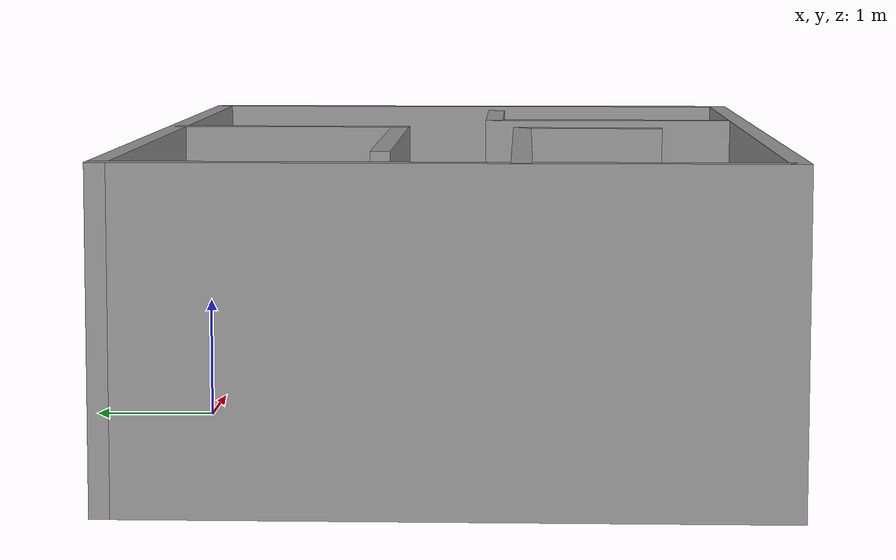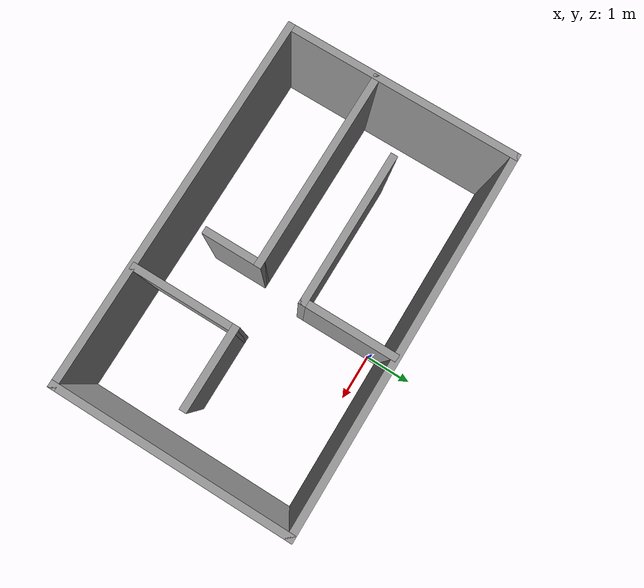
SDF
<?xml version='1.0'?>
<sdf version='1.7'>
  <model name='room'>
    <pose>-0.415 -2.155 0 0 -0 0</pose>
    <link name='Wall_11'>
      <collision name='Wall_11_Collision'>
        <geometry>
          <box>
            <size>2 0.15 2.5</size>
          </box>
        </geometry>
        <pose>0 0 1.25 0 -0 0</pose>
      </collision>
      <visual name='Wall_11_Visual'>
        <pose>0 0 1.25 0 -0 0</pose>
        <geometry>
          <box>
            <size>2 0.15 2.5</size>
          </box>
        </geometry>
        <material>
          <script>
            <uri>file://media/materials/scripts/gazebo.material</uri>
            <name>Gazebo/Grey</name>
          </script>
          <ambient>1 1 1 1</ambient>
        </material>
        <meta>
          <layer>0</layer>
        </meta>
      </visual>
      <pose>0.3885 1.447 0 0 -0 -1.5708</pose>
    </link>
    <link name='Wall_12'>
      <collision name='Wall_12_Collision'>
        <geometry>
          <box>
            <size>3.25 0.15 2.5</size>
          </box>
        </geometry>
        <pose>0 0 1.25 0 -0 0</pose>
      </collision>
      <visual name='Wall_12_Visual'>
        <pose>0 0 1.25 0 -0 0</pose>
        <geometry>
          <box>
            <size>3.25 0.15 2.5</size>
          </box>
        </geometry>
        <material>
          <script>
            <uri>file://media/materials/scripts/gazebo.material</uri>
            <name>Gazebo/Grey</name>
          </script>
          <ambient>1 1 1 1</ambient>
        </material>
        <meta>
          <layer>0</layer>
        </meta>
      </visual>
      <pose>-1.1615 0.522 0 0 -0 3.14159</pose>
    </link>
    <link name='Wall_14'>
      <collision name='Wall_14_Collision'>
        <geometry>
          <box>
            <size>4.25 0.15 2.5</size>
          </box>
        </geometry>
        <pose>0 0 1.25 0 -0 0</pose>
      </collision>
      <visual name='Wall_14_Visual'>
        <pose>0 0 1.25 0 -0 0</pose>
        <geometry>
          <box>
            <size>4.25 0.15 2.5</size>
          </box>
        </geometry>
        <material>
          <script>
            <uri>file://media/materials/scripts/gazebo.material</uri>
            <name>Gazebo/Grey</name>
          </script>
          <ambient>1 1 1 1</ambient>
        </material>
        <meta>
          <layer>0</layer>
        </meta>
      </visual>
      <pose>-1.828 -0.5145 0 0 -0 0</pose>
    </link>
    <link name='Wall_15'>
      <collision name='Wall_15_Collision'>
        <geometry>
          <box>
            <size>1.25 0.15 2.5</size>
          </box>
        </geometry>
        <pose>0 0 1.25 0 -0 0</pose>
      </collision>
      <visual name='Wall_15_Visual'>
        <pose>0 0 1.25 0 -0 0</pose>
        <geometry>
          <box>
            <size>1.25 0.15 2.5</size>
          </box>
        </geometry>
        <material>
          <script>
            <uri>file://media/materials/scripts/gazebo.material</uri>
            <name>Gazebo/Grey</name>
          </script>
          <ambient>1 1 1 1</ambient>
        </material>
        <meta>
          <layer>0</layer>
        </meta>
      </visual>
      <pose>0.222 -1.0645 0 0 -0 -1.5708</pose>
    </link>
    <link name='Wall_18'>
      <collision name='Wall_18_Collision'>
        <geometry>
          <box>
            <size>2.25 0.15 2.5</size>
          </box>
        </geometry>
        <pose>0 0 1.25 0 -0 0</pose>
      </collision>
      <visual name='Wall_18_Visual'>
        <pose>0 0 1.25 0 -0 0</pose>
        <geometry>
          <box>
            <size>2.25 0.15 2.5</size>
          </box>
        </geometry>
        <material>
          <script>
            <uri>file://media/materials/scripts/gazebo.material</uri>
            <name>Gazebo/Grey</name>
          </script>
          <ambient>1 1 1 1</ambient>
        </material>
        <meta>
          <layer>0</layer>
        </meta>
      </visual>
      <pose>1.4465 -1.316 0 0 -0 1.5708</pose>
    </link>
    <link name='Wall_19'>
      <collision name='Wall_19_Collision'>
        <geometry>
          <box>
            <size>1.75 0.15 2.5</size>
          </box>
        </geometry>
        <pose>0 0 1.25 0 -0 0</pose>
      </collision>
      <visual name='Wall_19_Visual'>
        <pose>0 0 1.25 0 -0 0</pose>
        <geometry>
          <box>
            <size>1.75 0.15 2.5</size>
          </box>
        </geometry>
        <material>
          <script>
            <uri>file://media/materials/scripts/gazebo.material</uri>
            <name>Gazebo/Grey</name>
          </script>
          <ambient>1 1 1 1</ambient>
        </material>
        <meta>
          <layer>0</layer>
        </meta>
      </visual>
      <pose>2.2465 -0.266 0 0 -0 0</pose>
    </link>
    <link name='Wall_6'>
      <collision name='Wall_6_Collision'>
        <geometry>
          <box>
            <size>8 0.15 2.5</size>
          </box>
        </geometry>
        <pose>0 0 1.25 0 -0 0</pose>
      </collision>
      <visual name='Wall_6_Visual'>
        <pose>0 0 1.25 0 -0 0</pose>
        <geometry>
          <box>
            <size>8 0.15 2.5</size>
          </box>
        </geometry>
        <material>
          <script>
            <uri>file://media/materials/scripts/gazebo.material</uri>
            <name>Gazebo/Grey</name>
          </script>
          <ambient>1 1 1 1</ambient>
        </material>
        <meta>
          <layer>0</layer>
        </meta>
      </visual>
      <pose>0 -2.425 0 0 -0 0</pose>
    </link>
    <link name='Wall_7'>
      <collision name='Wall_7_Collision'>
        <geometry>
          <box>
            <size>5 0.15 2.5</size>
          </box>
        </geometry>
        <pose>0 0 1.25 0 -0 0</pose>
      </collision>
      <visual name='Wall_7_Visual'>
        <pose>0 0 1.25 0 -0 0</pose>
        <geometry>
          <box>
            <size>5 0.15 2.5</size>
          </box>
        </geometry>
        <material>
          <script>
            <uri>file://media/materials/scripts/gazebo.material</uri>
            <name>Gazebo/Grey</name>
          </script>
          <ambient>1 1 1 1</ambient>
        </material>
        <meta>
          <layer>0</layer>
        </meta>
      </visual>
      <pose>3.925 0 0 0 -0 1.5708</pose>
    </link>
    <link name='Wall_8'>
      <collision name='Wall_8_Collision'>
        <geometry>
          <box>
            <size>8 0.15 2.5</size>
          </box>
        </geometry>
        <pose>0 0 1.25 0 -0 0</pose>
      </collision>
      <visual name='Wall_8_Visual'>
        <pose>0 0 1.25 0 -0 0</pose>
        <geometry>
          <box>
            <size>8 0.15 2.5</size>
          </box>
        </geometry>
        <material>
          <script>
            <uri>file://media/materials/scripts/gazebo.material</uri>
            <name>Gazebo/Grey</name>
          </script>
          <ambient>1 1 1 1</ambient>
        </material>
        <meta>
          <layer>0</layer>
        </meta>
      </visual>
      <pose>0 2.425 0 0 -0 3.14159</pose>
    </link>
    <link name='Wall_9'>
      <collision name='Wall_9_Collision'>
        <geometry>
          <box>
            <size>5 0.15 2.5</size>
          </box>
        </geometry>
        <pose>0 0 1.25 0 -0 0</pose>
      </collision>
      <visual name='Wall_9_Visual'>
        <pose>0 0 1.25 0 -0 0</pose>
        <geometry>
          <box>
            <size>5 0.15 2.5</size>
          </box>
        </geometry>
        <material>
          <script>
            <uri>file://media/materials/scripts/gazebo.material</uri>
            <name>Gazebo/Grey</name>
          </script>
          <ambient>1 1 1 1</ambient>
        </material>
        <meta>
          <layer>0</layer>
        </meta>
      </visual>
      <pose>-3.925 0 0 0 -0 -1.5708</pose>
    </link>
    <static>1</static>
  </model>
</sdf>
